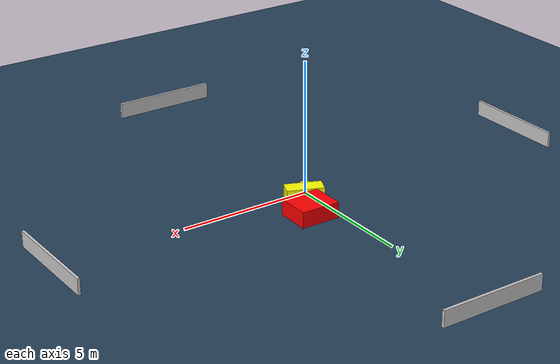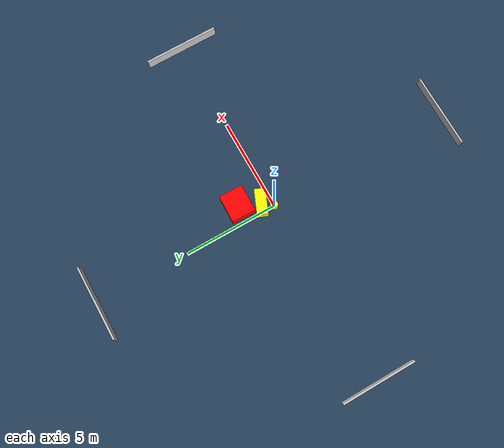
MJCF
<?xml version="1.0" ?>
<mujoco model="generated_environment">
  <option timestep="0.01" integrator="RK4" cone="elliptic"/>
  <default>
    <geom density="1"/>
  </default>
  <asset>
    <texture builtin="gradient" height="3072" name="skybox" rgb1="0.3 0.5 0.7" rgb2="0 0 0" type="skybox" width="512"/>
    <texture builtin="checker" height="300" name="groundplane" rgb1="0.2 0.3 0.4" rgb2="0.1 0.2 0.3" type="2d" width="300"/>
    <material name="groundplane" reflectance="0.2" texrepeat="5 5" texture="groundplane"/>
  </asset>
  <worldbody>
    <light dir="0 0 -1" directional="true" pos="0 0 1.5"/>
    <geom condim="3" friction="0.5 0.005 0.001" material="groundplane" name="floor" pos="0 0 0" size="0 0 0.05" type="plane"/>
    <body name="walls">
      <geom name="wall_1" condim="4" pos="-10.0 0.0 0.3" rgba="0.800000011920929 0.800000011920929 0.800000011920929 1.0" size="0.05 2.0 0.3" type="box"/>
      <geom name="wall_2" condim="4" pos="10.0 0.0 0.3" rgba="0.800000011920929 0.800000011920929 0.800000011920929 1.0" size="0.05 2.0 0.3" type="box"/>
      <geom name="wall_3" condim="4" pos="0.0 -10.0 0.3" rgba="0.800000011920929 0.800000011920929 0.800000011920929 1.0" size="2.0 0.05 0.3" type="box"/>
      <geom name="wall_4" condim="4" pos="0.0 10.0 0.3" rgba="0.800000011920929 0.800000011920929 0.800000011920929 1.0" size="2.0 0.05 0.3" type="box"/>
    </body>
    <body name="robot">
      <joint name="joint_x" type="slide" pos="0 0 0" axis="1 0 0"/>
      <joint name="joint_y" type="slide" pos="0 0 0" axis="0 1 0"/>
      <geom name="robot" type="cylinder" pos="0.0 0.0 0.2" size="0.2 0.2 0.0" mass="5.0" friction="1.0 0.005 0.0001" condim="4" rgba="1.0 1.0 0.0 1.0"/>
    </body>
    <body name="obstacle_1_movable">
      <geom name="obstacle_1_movable" condim="4" pos="0.41519915101144506 0.5218449765203732 0.3" euler="0 0 247.4663029933531" friction="0.0 0.005 0.001" rgba="1.0 1.0 0.0 1.0" size="0.29224952060856135 0.6816945154724974 0.3" type="box" mass="0.1"/>
      <joint type="free"/>
    </body>
    <body name="obstacle_2_static">
      <geom name="obstacle_2_static" condim="4" pos="0.9258368663654211 1.6162484722752393 0.3" euler="0 0 269.30494459554416" friction="0.0 0.005 0.001" rgba="1.0 0.0 0.0 1.0" size="0.6457894935505492 0.7377586333044293 0.3" type="box"/>
    </body>
  </worldbody>
  <actuator>
    <motor name="actuator_x" joint="joint_x" gear="1" ctrlrange="-1 1"/>
    <motor name="actuator_y" joint="joint_y" gear="1" ctrlrange="-1 1"/>
  </actuator>
</mujoco>
